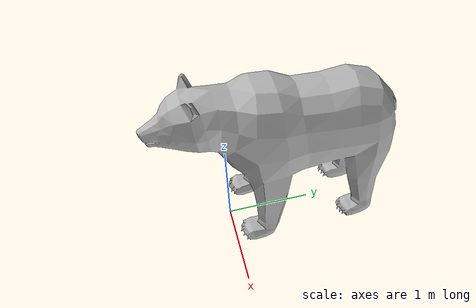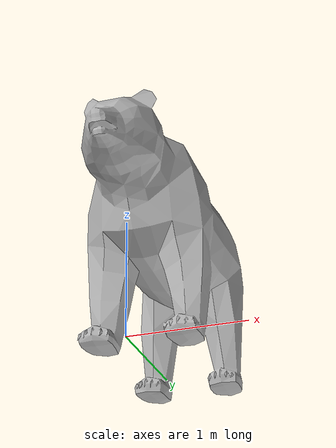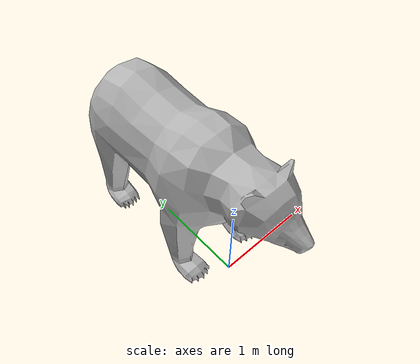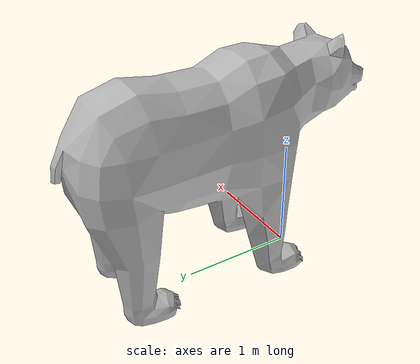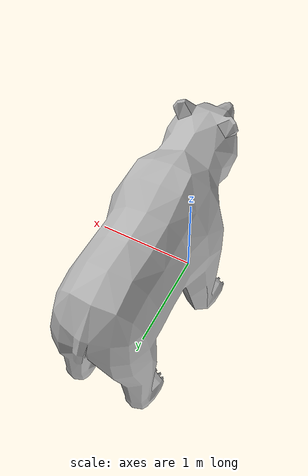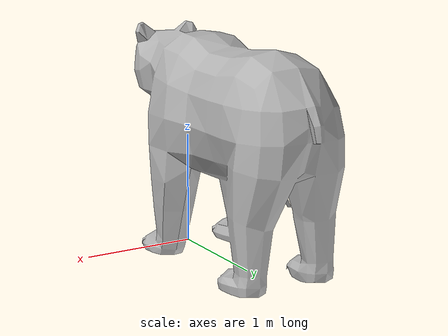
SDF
<?xml version="1.0"?>
<sdf version="1.8">
  <model name="bear">
    <!-- Keep model frame at ground level; no offsets here -->
    <pose>0 0 0 0 0 0</pose>
    <static>false</static>
    <canonical_link>body</canonical_link>

    <link name="body">
      <gravity>true</gravity>

      <!-- Reasonable mass/inertia so the solver settles quickly -->
      <inertial>
        <mass>70</mass>
        <inertia>
          <ixx>1.67</ixx>
          <ixy>0</ixy>
          <ixz>0</ixz>
          <iyy>1.67</iyy>
          <iyz>0</iyz>
          <izz>1.67</izz>
        </inertia>
      </inertial>

      <!-- VISUAL: no artificial Z lift -->
      <visual name="visual">
        <pose>0 0 0 0 0 0</pose>
        <geometry>
          <mesh>
            <uri>model://models/bear/bear.obj</uri>
            <scale>0.1 0.1 0.1</scale>
          </mesh>
        </geometry>
      </visual>

      <!-- COLLISION -->
      <collision name="coll_mesh">
        <!-- Start with -0.35 to -0.45; tweak live with View→Collisions -->
        <pose>0 0 0 0 0 0</pose>
        <geometry>
          <mesh>
            <uri>model://models/bear/bear.obj</uri>
            <scale>0.1 0.1 0.1</scale>
          </mesh>
        </geometry>
        <surface>
          <contact>
            <ode>
              <contact_surface_layer>0.0</contact_surface_layer>
            </ode>
          </contact>
          <friction>
            <ode/>
          </friction>
        </surface>
      </collision>

      <plugin filename="gz-sim-thermal-system" name="gz::sim::systems::Thermal">
        <temperature>310.0</temperature>
        <emissivity>0.95</emissivity>
      </plugin>

    </link>
  </model>
</sdf>
